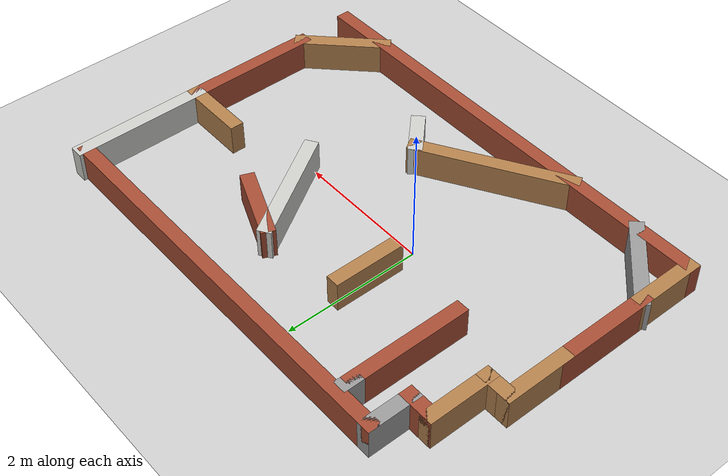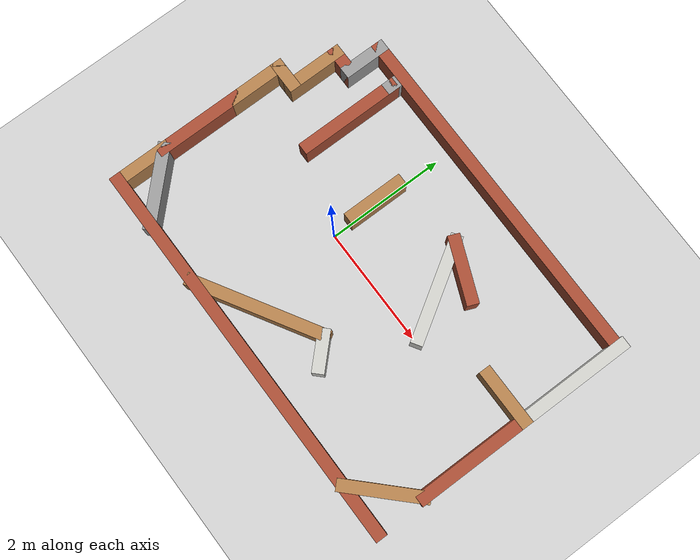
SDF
<sdf version="1.7">
 <world name="default">
  <light name="sun" type="directional">
   <pose>0 0 10 0 -0 0</pose>
   <diffuse>0.8 0.8 0.8 1</diffuse>
   <specular>0.2 0.2 0.2 1</specular>
   <attenuation>
    <range>1000</range>
    <constant>0.9</constant>
    <linear>0.01</linear>
    <quadratic>0.001</quadratic>
   </attenuation>
   <direction>-0.5 0.1 -0.9</direction>
   <spot><inner_angle>0</inner_angle><outer_angle>0</outer_angle><falloff>0</falloff></spot>
  </light>
  <model name="ground_plane">
   <static>1</static>
   <link name="link">
    <collision name="collision">
     <geometry><plane><normal>0 0 1</normal><size>100 100</size></plane></geometry>
     <surface>
      <contact><collide_bitmask>65535</collide_bitmask></contact>
      <friction><ode><mu>100</mu><mu2>50</mu2></ode></friction>
     </surface>
    </collision>
    <visual name="visual">
     <cast_shadows>0</cast_shadows>
     <geometry><plane><normal>0 0 1</normal><size>100 100</size></plane></geometry>
     <material>
      <script><uri>file://media/materials/scripts/gazebo.material</uri><name>Gazebo/Grey</name></script>
     </material>
    </visual>
   </link>
  </model>
  <gravity>0 0 -9.8</gravity>
  <magnetic_field>6e-06 2.3e-05 -4.2e-05</magnetic_field>
  <atmosphere type="adiabatic"/>
  <physics type="ode">
   <max_step_size>0.001</max_step_size>
   <real_time_factor>1</real_time_factor>
   <real_time_update_rate>0.0</real_time_update_rate>
   <max_step_size>0.003</max_step_size>
   <ode>
    <solver>
     <type>quick</type>
     <iters>150</iters>
     <precon_iters>0</precon_iters>
     <sor>1.400000</sor>
     <use_dynamic_moi_rescaling>1</use_dynamic_moi_rescaling>
    </solver>
    <constraints>
     <cfm>0.00001</cfm>
     <erp>0.2</erp>
     <contact_max_correcting_vel>2000.000000</contact_max_correcting_vel>
     <contact_surface_layer>0.01000</contact_surface_layer>
    </constraints>
   </ode>
  </physics>
  <scene><ambient>0.4 0.4 0.4 1</ambient><background>0.7 0.7 0.7 1</background><shadows>1</shadows></scene>
  <spherical_coordinates>
   <surface_model>EARTH_WGS84</surface_model>
   <latitude_deg>0</latitude_deg>
   <longitude_deg>0</longitude_deg>
   <elevation>0</elevation>
   <heading_deg>0</heading_deg>
  </spherical_coordinates>
  <model name="iros24_4">
   <pose>0.682949 0.081705 0 0 -0 0</pose>
   <link name="Wall_0">
    <collision name="Wall_0_Collision">
     <geometry><box><size>6.8 0.2 0.45</size></box></geometry>
     <pose>0 0 0.225 0 -0 0</pose>
    </collision>
    <visual name="Wall_0_Visual">
     <pose>0 0 0.225 0 -0 0</pose>
     <geometry><box><size>6.8 0.2 0.45</size></box></geometry>
     <material>
      <script><uri>file://media/materials/scripts/gazebo.material</uri><name>Gazebo/Bricks</name></script>
      <ambient>1 1 1 1</ambient>
     </material>
     <meta><layer>0</layer></meta>
    </visual>
    <pose>0 -2.25429 0 0 -0 0</pose>
   </link>
   <link name="Wall_101">
    <collision name="Wall_101_Collision">
     <geometry><box><size>1.79531 0.2 0.45</size></box></geometry>
     <pose>0 0 0.225 0 -0 0</pose>
    </collision>
    <visual name="Wall_101_Visual">
     <pose>0 0 0.225 0 -0 0</pose>
     <geometry><box><size>1.79531 0.2 0.45</size></box></geometry>
     <material>
      <script><uri>file://media/materials/scripts/gazebo.material</uri><name>Gazebo/CeilingTiled</name></script>
      <ambient>1 1 1 1</ambient>
     </material>
     <meta><layer>0</layer></meta>
    </visual>
    <pose>0.975 0.620711 0 0 -0 2.13272</pose>
   </link>
   <link name="Wall_105">
    <collision name="Wall_105_Collision">
     <geometry><box><size>1.05 0.2 0.45</size></box></geometry>
     <pose>0 0 0.225 0 -0 0</pose>
    </collision>
    <visual name="Wall_105_Visual">
     <pose>0 0 0.225 0 -0 0</pose>
     <geometry><box><size>1.05 0.2 0.45</size></box></geometry>
     <material>
      <script><uri>file://media/materials/scripts/gazebo.material</uri><name>Gazebo/Wood</name></script>
      <ambient>1 1 1 1</ambient>
     </material>
     <meta><layer>0</layer></meta>
    </visual>
    <pose>-3.3 -1.82929 0 0 -0 1.5708</pose>
   </link>
   <link name="Wall_14">
    <collision name="Wall_14_Collision">
     <geometry><box><size>2.35232 0.2 0.45</size></box></geometry>
     <pose>0 0 0.225 0 -0 0</pose>
    </collision>
    <visual name="Wall_14_Visual">
     <pose>0 0 0.225 0 -0 0</pose>
     <geometry><box><size>2.35232 0.2 0.45</size></box></geometry>
     <material>
      <script><uri>file://media/materials/scripts/gazebo.material</uri><name>Gazebo/Wood</name></script>
      <ambient>1 1 1 1</ambient>
     </material>
     <meta><layer>0</layer></meta>
    </visual>
    <pose>-0.425 -1.70429 0 0 -0 -2.60516</pose>
   </link>
   <link name="Wall_18">
    <collision name="Wall_18_Collision">
     <geometry><box><size>0.694975 0.2 0.45</size></box></geometry>
     <pose>0 0 0.225 0 -0 0</pose>
    </collision>
    <visual name="Wall_18_Visual">
     <pose>0 0 0.225 0 -0 0</pose>
     <geometry><box><size>0.694975 0.2 0.45</size></box></geometry>
     <material>
      <script><uri>file://media/materials/scripts/gazebo.material</uri><name>Gazebo/CeilingTiled</name></script>
      <ambient>1 1 1 1</ambient>
     </material>
     <meta><layer>0</layer></meta>
    </visual>
    <pose>0.675 -1.32929 0 0 -0 2.35619</pose>
   </link>
   <link name="Wall_23">
    <collision name="Wall_23_Collision">
     <geometry><box><size>1.40208 0.2 0.45</size></box></geometry>
     <pose>0 0 0.225 0 -0 0</pose>
    </collision>
    <visual name="Wall_23_Visual">
     <pose>0 0 0.225 0 -0 0</pose>
     <geometry><box><size>1.40208 0.2 0.45</size></box></geometry>
     <material>
      <script><uri>file://media/materials/scripts/gazebo.material</uri><name>Gazebo/Wood</name></script>
      <ambient>1 1 1 1</ambient>
     </material>
     <meta><layer>0</layer></meta>
    </visual>
    <pose>2.875 -1.82929 0 0 -0 -2.35619</pose>
   </link>
   <link name="Wall_25">
    <collision name="Wall_25_Collision">
     <geometry><box><size>2.05 0.2 0.45</size></box></geometry>
     <pose>0 0 0.225 0 -0 0</pose>
    </collision>
    <visual name="Wall_25_Visual">
     <pose>0 0 0.225 0 -0 0</pose>
     <geometry><box><size>2.05 0.2 0.45</size></box></geometry>
     <material>
      <script><uri>file://media/materials/scripts/gazebo.material</uri><name>Gazebo/Bricks</name></script>
      <ambient>1 1 1 1</ambient>
     </material>
     <meta><layer>0</layer></meta>
    </visual>
    <pose>3.3 -0.479289 0 0 -0 1.5708</pose>
   </link>
   <link name="Wall_26">
    <collision name="Wall_26_Collision">
     <geometry><box><size>1.05 0.2 0.45</size></box></geometry>
     <pose>0 0 0.225 0 -0 0</pose>
    </collision>
    <visual name="Wall_26_Visual">
     <pose>0 0 0.225 0 -0 0</pose>
     <geometry><box><size>1.05 0.2 0.45</size></box></geometry>
     <material>
      <script><uri>file://media/materials/scripts/gazebo.material</uri><name>Gazebo/Wood</name></script>
      <ambient>1 1 1 1</ambient>
     </material>
     <meta><layer>0</layer></meta>
    </visual>
    <pose>2.875 0.445711 0 0 -0 3.14159</pose>
   </link>
   <link name="Wall_28">
    <collision name="Wall_28_Collision">
     <geometry><box><size>1.05 0.2 0.45</size></box></geometry>
     <pose>0 0 0.225 0 -0 0</pose>
    </collision>
    <visual name="Wall_28_Visual">
     <pose>0 0 0.225 0 -0 0</pose>
     <geometry><box><size>1.05 0.2 0.45</size></box></geometry>
     <material>
      <script><uri>file://media/materials/scripts/gazebo.material</uri><name>Gazebo/Wood</name></script>
      <ambient>1 1 1 1</ambient>
     </material>
     <meta><layer>0</layer></meta>
    </visual>
    <pose>-3.3 0.370711 0 0 -0 1.5708</pose>
   </link>
   <link name="Wall_29">
    <collision name="Wall_29_Collision">
     <geometry><box><size>0.55 0.2 0.45</size></box></geometry>
     <pose>0 0 0.225 0 -0 0</pose>
    </collision>
    <visual name="Wall_29_Visual">
     <pose>0 0 0.225 0 -0 0</pose>
     <geometry><box><size>0.55 0.2 0.45</size></box></geometry>
     <material>
      <script><uri>file://media/materials/scripts/gazebo.material</uri><name>Gazebo/Wood</name></script>
      <ambient>1 1 1 1</ambient>
     </material>
     <meta><layer>0</layer></meta>
    </visual>
    <pose>-3.125 0.795711 0 0 -0 0</pose>
   </link>
   <link name="Wall_30">
    <collision name="Wall_30_Collision">
     <geometry><box><size>1.05 0.2 0.45</size></box></geometry>
     <pose>0 0 0.225 0 -0 0</pose>
    </collision>
    <visual name="Wall_30_Visual">
     <pose>0 0 0.225 0 -0 0</pose>
     <geometry><box><size>1.05 0.2 0.45</size></box></geometry>
     <material>
      <script><uri>file://media/materials/scripts/gazebo.material</uri><name>Gazebo/Wood</name></script>
      <ambient>1 1 1 1</ambient>
     </material>
     <meta><layer>0</layer></meta>
    </visual>
    <pose>-2.95 1.22071 0 0 -0 1.5708</pose>
   </link>
   <link name="Wall_31">
    <collision name="Wall_31_Collision">
     <geometry><box><size>0.55 0.2 0.45</size></box></geometry>
     <pose>0 0 0.225 0 -0 0</pose>
    </collision>
    <visual name="Wall_31_Visual">
     <pose>0 0 0.225 0 -0 0</pose>
     <geometry><box><size>0.55 0.2 0.45</size></box></geometry>
     <material>
      <script><uri>file://media/materials/scripts/gazebo.material</uri><name>Gazebo/Bricks</name></script>
      <ambient>1 1 1 1</ambient>
     </material>
     <meta><layer>0</layer></meta>
    </visual>
    <pose>-2.775 1.64571 0 0 -0 0</pose>
   </link>
   <link name="Wall_49">
    <collision name="Wall_49_Collision">
     <geometry><box><size>1.8 0.2 0.45</size></box></geometry>
     <pose>0 0 0.225 0 -0 0</pose>
    </collision>
    <visual name="Wall_49_Visual">
     <pose>0 0 0.225 0 -0 0</pose>
     <geometry><box><size>1.8 0.2 0.45</size></box></geometry>
     <material>
      <script><uri>file://media/materials/scripts/gazebo.material</uri><name>Gazebo/Bricks</name></script>
      <ambient>1 1 1 1</ambient>
     </material>
     <meta><layer>0</layer></meta>
    </visual>
    <pose>-2 1.19571 0 0 -0 -1.5708</pose>
   </link>
   <link name="Wall_5">
    <collision name="Wall_5_Collision">
     <geometry><box><size>1.55 0.2 0.45</size></box></geometry>
     <pose>0 0 0.225 0 -0 0</pose>
    </collision>
    <visual name="Wall_5_Visual">
     <pose>0 0 0.225 0 -0 0</pose>
     <geometry><box><size>1.55 0.2 0.45</size></box></geometry>
     <material>
      <script><uri>file://media/materials/scripts/gazebo.material</uri><name>Gazebo/Bricks</name></script>
      <ambient>1 1 1 1</ambient>
     </material>
     <meta><layer>0</layer></meta>
    </visual>
    <pose>-3.3 -0.729289 0 0 -0 1.5708</pose>
   </link>
   <link name="Wall_56">
    <collision name="Wall_56_Collision">
     <geometry><box><size>1.05 0.2 0.45</size></box></geometry>
     <pose>0 0 0.225 0 -0 0</pose>
    </collision>
    <visual name="Wall_56_Visual">
     <pose>0 0 0.225 0 -0 0</pose>
     <geometry><box><size>1.05 0.2 0.45</size></box></geometry>
     <material>
      <script><uri>file://media/materials/scripts/gazebo.material</uri><name>Gazebo/Wood</name></script>
      <ambient>1 1 1 1</ambient>
     </material>
     <meta><layer>0</layer></meta>
    </visual>
    <pose>-0.7 0.720711 0 0 -0 1.5708</pose>
   </link>
   <link name="Wall_74">
    <collision name="Wall_74_Collision">
     <geometry><box><size>0.8 0.2 0.45</size></box></geometry>
     <pose>0 0 0.225 0 -0 0</pose>
    </collision>
    <visual name="Wall_74_Visual">
     <pose>0 0 0.225 0 -0 0</pose>
     <geometry><box><size>0.8 0.2 0.45</size></box></geometry>
     <material>
      <script><uri>file://media/materials/scripts/gazebo.material</uri><name>Gazebo/Grey</name></script>
      <ambient>1 1 1 1</ambient>
     </material>
     <meta><layer>0</layer></meta>
    </visual>
    <pose>-2.6 1.94571 0 0 -0 1.5708</pose>
   </link>
   <link name="Wall_77">
    <collision name="Wall_77_Collision">
     <geometry><box><size>0.3 0.2 0.45</size></box></geometry>
     <pose>0 0 0.225 0 -0 0</pose>
    </collision>
    <visual name="Wall_77_Visual">
     <pose>0 0 0.225 0 -0 0</pose>
     <geometry><box><size>0.3 0.2 0.45</size></box></geometry>
     <material>
      <script><uri>file://media/materials/scripts/gazebo.material</uri><name>Gazebo/Grey</name></script>
      <ambient>1 1 1 1</ambient>
     </material>
     <meta><layer>0</layer></meta>
    </visual>
    <pose>-2 2.04571 0 0 -0 1.5708</pose>
   </link>
   <link name="Wall_80">
    <collision name="Wall_80_Collision">
     <geometry><box><size>2.05 0.2 0.45</size></box></geometry>
     <pose>0 0 0.225 0 -0 0</pose>
    </collision>
    <visual name="Wall_80_Visual">
     <pose>0 0 0.225 0 -0 0</pose>
     <geometry><box><size>2.05 0.2 0.45</size></box></geometry>
     <material>
      <script><uri>file://media/materials/scripts/gazebo.material</uri><name>Gazebo/CeilingTiled</name></script>
      <ambient>1 1 1 1</ambient>
     </material>
     <meta><layer>0</layer></meta>
    </visual>
    <pose>3.3 1.37071 0 0 -0 1.5708</pose>
   </link>
   <link name="Wall_82">
    <collision name="Wall_82_Collision">
     <geometry><box><size>6.05 0.2 0.45</size></box></geometry>
     <pose>0 0 0.225 0 -0 0</pose>
    </collision>
    <visual name="Wall_82_Visual">
     <pose>0 0 0.225 0 -0 0</pose>
     <geometry><box><size>6.05 0.2 0.45</size></box></geometry>
     <material>
      <script><uri>file://media/materials/scripts/gazebo.material</uri><name>Gazebo/Bricks</name></script>
      <ambient>1 1 1 1</ambient>
     </material>
     <meta><layer>0</layer></meta>
    </visual>
    <pose>0.325 2.24571 0 0 -0 0</pose>
   </link>
   <link name="Wall_9">
    <collision name="Wall_9_Collision">
     <geometry><box><size>1.40208 0.2 0.45</size></box></geometry>
     <pose>0 0 0.225 0 -0 0</pose>
    </collision>
    <visual name="Wall_9_Visual">
     <pose>0 0 0.225 0 -0 0</pose>
     <geometry><box><size>1.40208 0.2 0.45</size></box></geometry>
     <material>
      <script><uri>file://media/materials/scripts/gazebo.material</uri><name>Gazebo/Grey</name></script>
      <ambient>1 1 1 1</ambient>
     </material>
     <meta><layer>0</layer></meta>
    </visual>
    <pose>-2.875 -1.82929 0 0 -0 2.35619</pose>
   </link>
   <link name="Wall_98">
    <collision name="Wall_98_Collision">
     <geometry><box><size>1.11924 0.2 0.45</size></box></geometry>
     <pose>0 0 0.225 0 -0 0</pose>
    </collision>
    <visual name="Wall_98_Visual">
     <pose>0 0 0.225 0 -0 0</pose>
     <geometry><box><size>1.11924 0.2 0.45</size></box></geometry>
     <material>
      <script><uri>file://media/materials/scripts/gazebo.material</uri><name>Gazebo/Bricks</name></script>
      <ambient>1 1 1 1</ambient>
     </material>
     <meta><layer>0</layer></meta>
    </visual>
    <pose>0.975 1.12071 0 0 -0 2.75099</pose>
   </link>
   <static>1</static>
  </model>
 </world>
</sdf>
